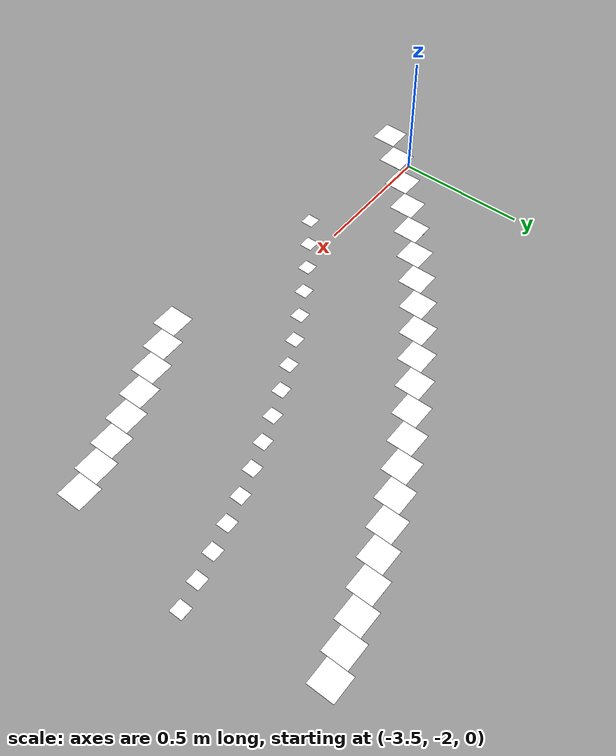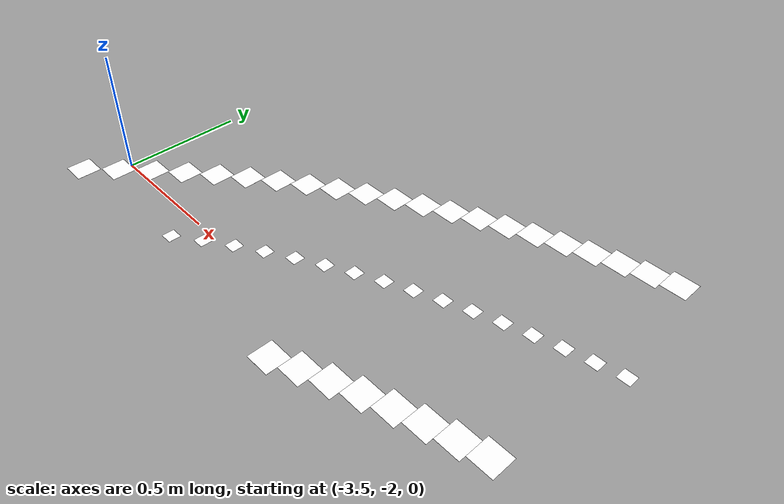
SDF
<sdf version="1.5">
 <model name="AutoNOMOS_mini_intersection">
  <static>true</static>
  <link name="L2_p10">
   <pose>-3.6 -2.164 0.011 0 0 0</pose>
   <visual name="visual_L2_p10">
    <cast_shadows>false</cast_shadows>
    <geometry><plane><normal>0 0 1</normal><size>.1 .1</size></plane></geometry>
    <material>
     <ambient>0 0 0 0</ambient>
     <diffuse>1 1 1 0</diffuse>
     <specular>0 0 0 0</specular>
     <emissive>0 0 0 0</emissive>
    </material>
   </visual>
  </link>
  <link name="L2_p11">
   <pose>-3.5 -2.06 0.011 0 0 0</pose>
   <visual name="visual_L2_p11">
    <cast_shadows>false</cast_shadows>
    <geometry><plane><normal>0 0 1</normal><size>.1 .1</size></plane></geometry>
    <material>
     <ambient>0 0 0 0</ambient>
     <diffuse>1 1 1 0</diffuse>
     <specular>0 0 0 0</specular>
     <emissive>0 0 0 0</emissive>
    </material>
   </visual>
  </link>
  <link name="L2_p12">
   <pose>-3.4 -1.961 0.011 0 0 0</pose>
   <visual name="visual_L2_p12">
    <cast_shadows>false</cast_shadows>
    <geometry><plane><normal>0 0 1</normal><size>.1 .1</size></plane></geometry>
    <material>
     <ambient>0 0 0 0</ambient>
     <diffuse>1 1 1 0</diffuse>
     <specular>0 0 0 0</specular>
     <emissive>0 0 0 0</emissive>
    </material>
   </visual>
  </link>
  <link name="L2_p13">
   <pose>-3.3 -1.867 0.011 0 0 0</pose>
   <visual name="visual_L2_p13">
    <cast_shadows>false</cast_shadows>
    <geometry><plane><normal>0 0 1</normal><size>.1 .1</size></plane></geometry>
    <material>
     <ambient>0 0 0 0</ambient>
     <diffuse>1 1 1 0</diffuse>
     <specular>0 0 0 0</specular>
     <emissive>0 0 0 0</emissive>
    </material>
   </visual>
  </link>
  <link name="L2_p14">
   <pose>-3.2 -1.779 0.011 0 0 0</pose>
   <visual name="visual_L2_p14">
    <cast_shadows>false</cast_shadows>
    <geometry><plane><normal>0 0 1</normal><size>.1 .1</size></plane></geometry>
    <material>
     <ambient>0 0 0 0</ambient>
     <diffuse>1 1 1 0</diffuse>
     <specular>0 0 0 0</specular>
     <emissive>0 0 0 0</emissive>
    </material>
   </visual>
  </link>
  <link name="L2_p15">
   <pose>-3.1 -1.696 0.011 0 0 0</pose>
   <visual name="visual_L2_p15">
    <cast_shadows>false</cast_shadows>
    <geometry><plane><normal>0 0 1</normal><size>.1 .1</size></plane></geometry>
    <material>
     <ambient>0 0 0 0</ambient>
     <diffuse>1 1 1 0</diffuse>
     <specular>0 0 0 0</specular>
     <emissive>0 0 0 0</emissive>
    </material>
   </visual>
  </link>
  <link name="L1_p16">
   <pose>-3 -2.118 0.011 0 0 0</pose>
   <visual name="visual_L1_p16">
    <cast_shadows>false</cast_shadows>
    <geometry><plane><normal>0 0 1</normal><size>.05 .05</size></plane></geometry>
    <material>
     <ambient>0 0 0 0</ambient>
     <diffuse>1 1 1 0</diffuse>
     <specular>0 0 0 0</specular>
     <emissive>0 0 0 0</emissive>
    </material>
   </visual>
  </link>
  <link name="L2_p16">
   <pose>-3 -1.618 0.011 0 0 0</pose>
   <visual name="visual_L2_p16">
    <cast_shadows>false</cast_shadows>
    <geometry><plane><normal>0 0 1</normal><size>.1 .1</size></plane></geometry>
    <material>
     <ambient>0 0 0 0</ambient>
     <diffuse>1 1 1 0</diffuse>
     <specular>0 0 0 0</specular>
     <emissive>0 0 0 0</emissive>
    </material>
   </visual>
  </link>
  <link name="L1_p17">
   <pose>-2.9 -2.045 0.011 0 0 0</pose>
   <visual name="visual_L1_p17">
    <cast_shadows>false</cast_shadows>
    <geometry><plane><normal>0 0 1</normal><size>.05 .05</size></plane></geometry>
    <material>
     <ambient>0 0 0 0</ambient>
     <diffuse>1 1 1 0</diffuse>
     <specular>0 0 0 0</specular>
     <emissive>0 0 0 0</emissive>
    </material>
   </visual>
  </link>
  <link name="L2_p17">
   <pose>-2.9 -1.545 0.011 0 0 0</pose>
   <visual name="visual_L2_p17">
    <cast_shadows>false</cast_shadows>
    <geometry><plane><normal>0 0 1</normal><size>.1 .1</size></plane></geometry>
    <material>
     <ambient>0 0 0 0</ambient>
     <diffuse>1 1 1 0</diffuse>
     <specular>0 0 0 0</specular>
     <emissive>0 0 0 0</emissive>
    </material>
   </visual>
  </link>
  <link name="L1_p18">
   <pose>-2.8 -1.976 0.011 0 0 0</pose>
   <visual name="visual_L1_p18">
    <cast_shadows>false</cast_shadows>
    <geometry><plane><normal>0 0 1</normal><size>.05 .05</size></plane></geometry>
    <material>
     <ambient>0 0 0 0</ambient>
     <diffuse>1 1 1 0</diffuse>
     <specular>0 0 0 0</specular>
     <emissive>0 0 0 0</emissive>
    </material>
   </visual>
  </link>
  <link name="L2_p18">
   <pose>-2.8 -1.476 0.011 0 0 0</pose>
   <visual name="visual_L2_p18">
    <cast_shadows>false</cast_shadows>
    <geometry><plane><normal>0 0 1</normal><size>.1 .1</size></plane></geometry>
    <material>
     <ambient>0 0 0 0</ambient>
     <diffuse>1 1 1 0</diffuse>
     <specular>0 0 0 0</specular>
     <emissive>0 0 0 0</emissive>
    </material>
   </visual>
  </link>
  <link name="L1_p19">
   <pose>-2.7 -1.912 0.011 0 0 0</pose>
   <visual name="visual_L1_p19">
    <cast_shadows>false</cast_shadows>
    <geometry><plane><normal>0 0 1</normal><size>.05 .05</size></plane></geometry>
    <material>
     <ambient>0 0 0 0</ambient>
     <diffuse>1 1 1 0</diffuse>
     <specular>0 0 0 0</specular>
     <emissive>0 0 0 0</emissive>
    </material>
   </visual>
  </link>
  <link name="L2_p19">
   <pose>-2.7 -1.412 0.011 0 0 0</pose>
   <visual name="visual_L2_p19">
    <cast_shadows>false</cast_shadows>
    <geometry><plane><normal>0 0 1</normal><size>.1 .1</size></plane></geometry>
    <material>
     <ambient>0 0 0 0</ambient>
     <diffuse>1 1 1 0</diffuse>
     <specular>0 0 0 0</specular>
     <emissive>0 0 0 0</emissive>
    </material>
   </visual>
  </link>
  <link name="L1_p20">
   <pose>-2.6 -1.852 0.011 0 0 0</pose>
   <visual name="visual_L1_p20">
    <cast_shadows>false</cast_shadows>
    <geometry><plane><normal>0 0 1</normal><size>.05 .05</size></plane></geometry>
    <material>
     <ambient>0 0 0 0</ambient>
     <diffuse>1 1 1 0</diffuse>
     <specular>0 0 0 0</specular>
     <emissive>0 0 0 0</emissive>
    </material>
   </visual>
  </link>
  <link name="L2_p20">
   <pose>-2.6 -1.352 0.011 0 0 0</pose>
   <visual name="visual_L2_p20">
    <cast_shadows>false</cast_shadows>
    <geometry><plane><normal>0 0 1</normal><size>.1 .1</size></plane></geometry>
    <material>
     <ambient>0 0 0 0</ambient>
     <diffuse>1 1 1 0</diffuse>
     <specular>0 0 0 0</specular>
     <emissive>0 0 0 0</emissive>
    </material>
   </visual>
  </link>
  <link name="L1_p21">
   <pose>-2.5 -1.796 0.011 0 0 0</pose>
   <visual name="visual_L1_p21">
    <cast_shadows>false</cast_shadows>
    <geometry><plane><normal>0 0 1</normal><size>.05 .05</size></plane></geometry>
    <material>
     <ambient>0 0 0 0</ambient>
     <diffuse>1 1 1 0</diffuse>
     <specular>0 0 0 0</specular>
     <emissive>0 0 0 0</emissive>
    </material>
   </visual>
  </link>
  <link name="L2_p21">
   <pose>-2.5 -1.296 0.011 0 0 0</pose>
   <visual name="visual_L2_p21">
    <cast_shadows>false</cast_shadows>
    <geometry><plane><normal>0 0 1</normal><size>.1 .1</size></plane></geometry>
    <material>
     <ambient>0 0 0 0</ambient>
     <diffuse>1 1 1 0</diffuse>
     <specular>0 0 0 0</specular>
     <emissive>0 0 0 0</emissive>
    </material>
   </visual>
  </link>
  <link name="L1_p22">
   <pose>-2.4 -1.744 0.011 0 0 0</pose>
   <visual name="visual_L1_p22">
    <cast_shadows>false</cast_shadows>
    <geometry><plane><normal>0 0 1</normal><size>.05 .05</size></plane></geometry>
    <material>
     <ambient>0 0 0 0</ambient>
     <diffuse>1 1 1 0</diffuse>
     <specular>0 0 0 0</specular>
     <emissive>0 0 0 0</emissive>
    </material>
   </visual>
  </link>
  <link name="L2_p22">
   <pose>-2.4 -1.244 0.011 0 0 0</pose>
   <visual name="visual_L2_p22">
    <cast_shadows>false</cast_shadows>
    <geometry><plane><normal>0 0 1</normal><size>.1 .1</size></plane></geometry>
    <material>
     <ambient>0 0 0 0</ambient>
     <diffuse>1 1 1 0</diffuse>
     <specular>0 0 0 0</specular>
     <emissive>0 0 0 0</emissive>
    </material>
   </visual>
  </link>
  <link name="L1_p23">
   <pose>-2.3 -1.696 0.011 0 0 0</pose>
   <visual name="visual_L1_p23">
    <cast_shadows>false</cast_shadows>
    <geometry><plane><normal>0 0 1</normal><size>.05 .05</size></plane></geometry>
    <material>
     <ambient>0 0 0 0</ambient>
     <diffuse>1 1 1 0</diffuse>
     <specular>0 0 0 0</specular>
     <emissive>0 0 0 0</emissive>
    </material>
   </visual>
  </link>
  <link name="L2_p23">
   <pose>-2.3 -1.196 0.011 0 0 0</pose>
   <visual name="visual_L2_p23">
    <cast_shadows>false</cast_shadows>
    <geometry><plane><normal>0 0 1</normal><size>.1 .1</size></plane></geometry>
    <material>
     <ambient>0 0 0 0</ambient>
     <diffuse>1 1 1 0</diffuse>
     <specular>0 0 0 0</specular>
     <emissive>0 0 0 0</emissive>
    </material>
   </visual>
  </link>
  <link name="L3_p23">
   <pose>-2.3 -2.196 0.011 0 0 0</pose>
   <visual name="visual_L3_p23">
    <cast_shadows>false</cast_shadows>
    <geometry><plane><normal>0 0 1</normal><size>.1 .1</size></plane></geometry>
    <material>
     <ambient>0 0 0 0</ambient>
     <diffuse>1 1 1 0</diffuse>
     <specular>0 0 0 0</specular>
     <emissive>0 0 0 0</emissive>
    </material>
   </visual>
  </link>
  <link name="L1_p24">
   <pose>-2.2 -1.652 0.011 0 0 0</pose>
   <visual name="visual_L1_p24">
    <cast_shadows>false</cast_shadows>
    <geometry><plane><normal>0 0 1</normal><size>.05 .05</size></plane></geometry>
    <material>
     <ambient>0 0 0 0</ambient>
     <diffuse>1 1 1 0</diffuse>
     <specular>0 0 0 0</specular>
     <emissive>0 0 0 0</emissive>
    </material>
   </visual>
  </link>
  <link name="L2_p24">
   <pose>-2.2 -1.152 0.011 0 0 0</pose>
   <visual name="visual_L2_p24">
    <cast_shadows>false</cast_shadows>
    <geometry><plane><normal>0 0 1</normal><size>.1 .1</size></plane></geometry>
    <material>
     <ambient>0 0 0 0</ambient>
     <diffuse>1 1 1 0</diffuse>
     <specular>0 0 0 0</specular>
     <emissive>0 0 0 0</emissive>
    </material>
   </visual>
  </link>
  <link name="L3_p24">
   <pose>-2.2 -2.152 0.011 0 0 0</pose>
   <visual name="visual_L3_p24">
    <cast_shadows>false</cast_shadows>
    <geometry><plane><normal>0 0 1</normal><size>.1 .1</size></plane></geometry>
    <material>
     <ambient>0 0 0 0</ambient>
     <diffuse>1 1 1 0</diffuse>
     <specular>0 0 0 0</specular>
     <emissive>0 0 0 0</emissive>
    </material>
   </visual>
  </link>
  <link name="L1_p25">
   <pose>-2.1 -1.611 0.011 0 0 0</pose>
   <visual name="visual_L1_p25">
    <cast_shadows>false</cast_shadows>
    <geometry><plane><normal>0 0 1</normal><size>.05 .05</size></plane></geometry>
    <material>
     <ambient>0 0 0 0</ambient>
     <diffuse>1 1 1 0</diffuse>
     <specular>0 0 0 0</specular>
     <emissive>0 0 0 0</emissive>
    </material>
   </visual>
  </link>
  <link name="L2_p25">
   <pose>-2.1 -1.111 0.011 0 0 0</pose>
   <visual name="visual_L2_p25">
    <cast_shadows>false</cast_shadows>
    <geometry><plane><normal>0 0 1</normal><size>.1 .1</size></plane></geometry>
    <material>
     <ambient>0 0 0 0</ambient>
     <diffuse>1 1 1 0</diffuse>
     <specular>0 0 0 0</specular>
     <emissive>0 0 0 0</emissive>
    </material>
   </visual>
  </link>
  <link name="L3_p25">
   <pose>-2.1 -2.111 0.011 0 0 0</pose>
   <visual name="visual_L3_p25">
    <cast_shadows>false</cast_shadows>
    <geometry><plane><normal>0 0 1</normal><size>.1 .1</size></plane></geometry>
    <material>
     <ambient>0 0 0 0</ambient>
     <diffuse>1 1 1 0</diffuse>
     <specular>0 0 0 0</specular>
     <emissive>0 0 0 0</emissive>
    </material>
   </visual>
  </link>
  <link name="L1_p26">
   <pose>-2 -1.573 0.011 0 0 0</pose>
   <visual name="visual_L1_p26">
    <cast_shadows>false</cast_shadows>
    <geometry><plane><normal>0 0 1</normal><size>.05 .05</size></plane></geometry>
    <material>
     <ambient>0 0 0 0</ambient>
     <diffuse>1 1 1 0</diffuse>
     <specular>0 0 0 0</specular>
     <emissive>0 0 0 0</emissive>
    </material>
   </visual>
  </link>
  <link name="L2_p26">
   <pose>-2 -1.073 0.011 0 0 0</pose>
   <visual name="visual_L2_p26">
    <cast_shadows>false</cast_shadows>
    <geometry><plane><normal>0 0 1</normal><size>.1 .1</size></plane></geometry>
    <material>
     <ambient>0 0 0 0</ambient>
     <diffuse>1 1 1 0</diffuse>
     <specular>0 0 0 0</specular>
     <emissive>0 0 0 0</emissive>
    </material>
   </visual>
  </link>
  <link name="L3_p26">
   <pose>-2 -2.073 0.011 0 0 0</pose>
   <visual name="visual_L3_p26">
    <cast_shadows>false</cast_shadows>
    <geometry><plane><normal>0 0 1</normal><size>.1 .1</size></plane></geometry>
    <material>
     <ambient>0 0 0 0</ambient>
     <diffuse>1 1 1 0</diffuse>
     <specular>0 0 0 0</specular>
     <emissive>0 0 0 0</emissive>
    </material>
   </visual>
  </link>
  <link name="L1_p27">
   <pose>-1.9 -1.538 0.011 0 0 0</pose>
   <visual name="visual_L1_p27">
    <cast_shadows>false</cast_shadows>
    <geometry><plane><normal>0 0 1</normal><size>.05 .05</size></plane></geometry>
    <material>
     <ambient>0 0 0 0</ambient>
     <diffuse>1 1 1 0</diffuse>
     <specular>0 0 0 0</specular>
     <emissive>0 0 0 0</emissive>
    </material>
   </visual>
  </link>
  <link name="L2_p27">
   <pose>-1.9 -1.038 0.011 0 0 0</pose>
   <visual name="visual_L2_p27">
    <cast_shadows>false</cast_shadows>
    <geometry><plane><normal>0 0 1</normal><size>.1 .1</size></plane></geometry>
    <material>
     <ambient>0 0 0 0</ambient>
     <diffuse>1 1 1 0</diffuse>
     <specular>0 0 0 0</specular>
     <emissive>0 0 0 0</emissive>
    </material>
   </visual>
  </link>
  <link name="L3_p27">
   <pose>-1.9 -2.038 0.011 0 0 0</pose>
   <visual name="visual_L3_p27">
    <cast_shadows>false</cast_shadows>
    <geometry><plane><normal>0 0 1</normal><size>.1 .1</size></plane></geometry>
    <material>
     <ambient>0 0 0 0</ambient>
     <diffuse>1 1 1 0</diffuse>
     <specular>0 0 0 0</specular>
     <emissive>0 0 0 0</emissive>
    </material>
   </visual>
  </link>
  <link name="L1_p28">
   <pose>-1.8 -1.507 0.011 0 0 0</pose>
   <visual name="visual_L1_p28">
    <cast_shadows>false</cast_shadows>
    <geometry><plane><normal>0 0 1</normal><size>.05 .05</size></plane></geometry>
    <material>
     <ambient>0 0 0 0</ambient>
     <diffuse>1 1 1 0</diffuse>
     <specular>0 0 0 0</specular>
     <emissive>0 0 0 0</emissive>
    </material>
   </visual>
  </link>
  <link name="L2_p28">
   <pose>-1.8 -1.007 0.011 0 0 0</pose>
   <visual name="visual_L2_p28">
    <cast_shadows>false</cast_shadows>
    <geometry><plane><normal>0 0 1</normal><size>.1 .1</size></plane></geometry>
    <material>
     <ambient>0 0 0 0</ambient>
     <diffuse>1 1 1 0</diffuse>
     <specular>0 0 0 0</specular>
     <emissive>0 0 0 0</emissive>
    </material>
   </visual>
  </link>
  <link name="L3_p28">
   <pose>-1.8 -2.007 0.011 0 0 0</pose>
   <visual name="visual_L3_p28">
    <cast_shadows>false</cast_shadows>
    <geometry><plane><normal>0 0 1</normal><size>.1 .1</size></plane></geometry>
    <material>
     <ambient>0 0 0 0</ambient>
     <diffuse>1 1 1 0</diffuse>
     <specular>0 0 0 0</specular>
     <emissive>0 0 0 0</emissive>
    </material>
   </visual>
  </link>
  <link name="L1_p29">
   <pose>-1.7 -1.478 0.011 0 0 0</pose>
   <visual name="visual_L1_p29">
    <cast_shadows>false</cast_shadows>
    <geometry><plane><normal>0 0 1</normal><size>.05 .05</size></plane></geometry>
    <material>
     <ambient>0 0 0 0</ambient>
     <diffuse>1 1 1 0</diffuse>
     <specular>0 0 0 0</specular>
     <emissive>0 0 0 0</emissive>
    </material>
   </visual>
  </link>
  <link name="L2_p29">
   <pose>-1.7 -0.978 0.011 0 0 0</pose>
   <visual name="visual_L2_p29">
    <cast_shadows>false</cast_shadows>
    <geometry><plane><normal>0 0 1</normal><size>.1 .1</size></plane></geometry>
    <material>
     <ambient>0 0 0 0</ambient>
     <diffuse>1 1 1 0</diffuse>
     <specular>0 0 0 0</specular>
     <emissive>0 0 0 0</emissive>
    </material>
   </visual>
  </link>
  <link name="L3_p29">
   <pose>-1.7 -1.978 0.011 0 0 0</pose>
   <visual name="visual_L3_p29">
    <cast_shadows>false</cast_shadows>
    <geometry><plane><normal>0 0 1</normal><size>.1 .1</size></plane></geometry>
    <material>
     <ambient>0 0 0 0</ambient>
     <diffuse>1 1 1 0</diffuse>
     <specular>0 0 0 0</specular>
     <emissive>0 0 0 0</emissive>
    </material>
   </visual>
  </link>
  <link name="L1_p30">
   <pose>-1.6 -1.452 0.011 0 0 0</pose>
   <visual name="visual_L1_p30">
    <cast_shadows>false</cast_shadows>
    <geometry><plane><normal>0 0 1</normal><size>.05 .05</size></plane></geometry>
    <material>
     <ambient>0 0 0 0</ambient>
     <diffuse>1 1 1 0</diffuse>
     <specular>0 0 0 0</specular>
     <emissive>0 0 0 0</emissive>
    </material>
   </visual>
  </link>
  <link name="L2_p30">
   <pose>-1.6 -0.952 0.011 0 0 0</pose>
   <visual name="visual_L2_p30">
    <cast_shadows>false</cast_shadows>
    <geometry><plane><normal>0 0 1</normal><size>.1 .1</size></plane></geometry>
    <material>
     <ambient>0 0 0 0</ambient>
     <diffuse>1 1 1 0</diffuse>
     <specular>0 0 0 0</specular>
     <emissive>0 0 0 0</emissive>
    </material>
   </visual>
  </link>
  <link name="L3_p30">
   <pose>-1.6 -1.952 0.011 0 0 0</pose>
   <visual name="visual_L3_p30">
    <cast_shadows>false</cast_shadows>
    <geometry><plane><normal>0 0 1</normal><size>.1 .1</size></plane></geometry>
    <material>
     <ambient>0 0 0 0</ambient>
     <diffuse>1 1 1 0</diffuse>
     <specular>0 0 0 0</specular>
     <emissive>0 0 0 0</emissive>
    </material>
   </visual>
  </link>
  <link name="L1_p31">
   <pose>-1.5 -1.428 0.011 0 0 0</pose>
   <visual name="visual_L1_p31">
    <cast_shadows>false</cast_shadows>
    <geometry><plane><normal>0 0 1</normal><size>.05 .05</size></plane></geometry>
    <material>
     <ambient>0 0 0 0</ambient>
     <diffuse>1 1 1 0</diffuse>
     <specular>0 0 0 0</specular>
     <emissive>0 0 0 0</emissive>
    </material>
   </visual>
  </link>
 </model>
</sdf>
